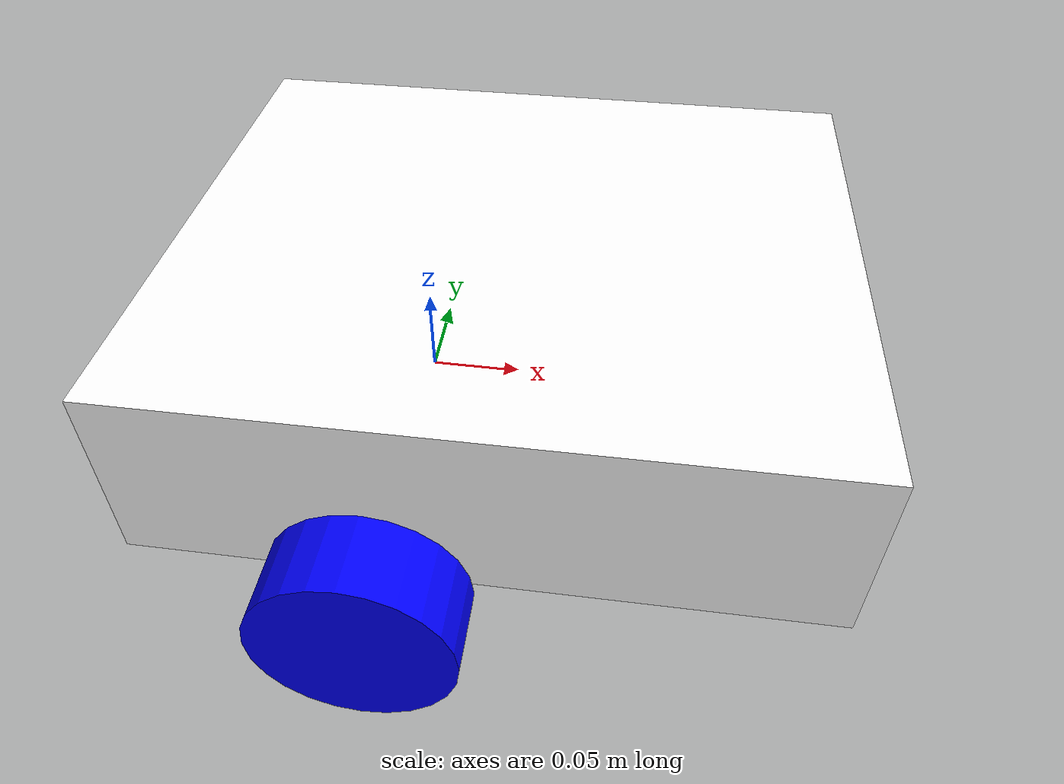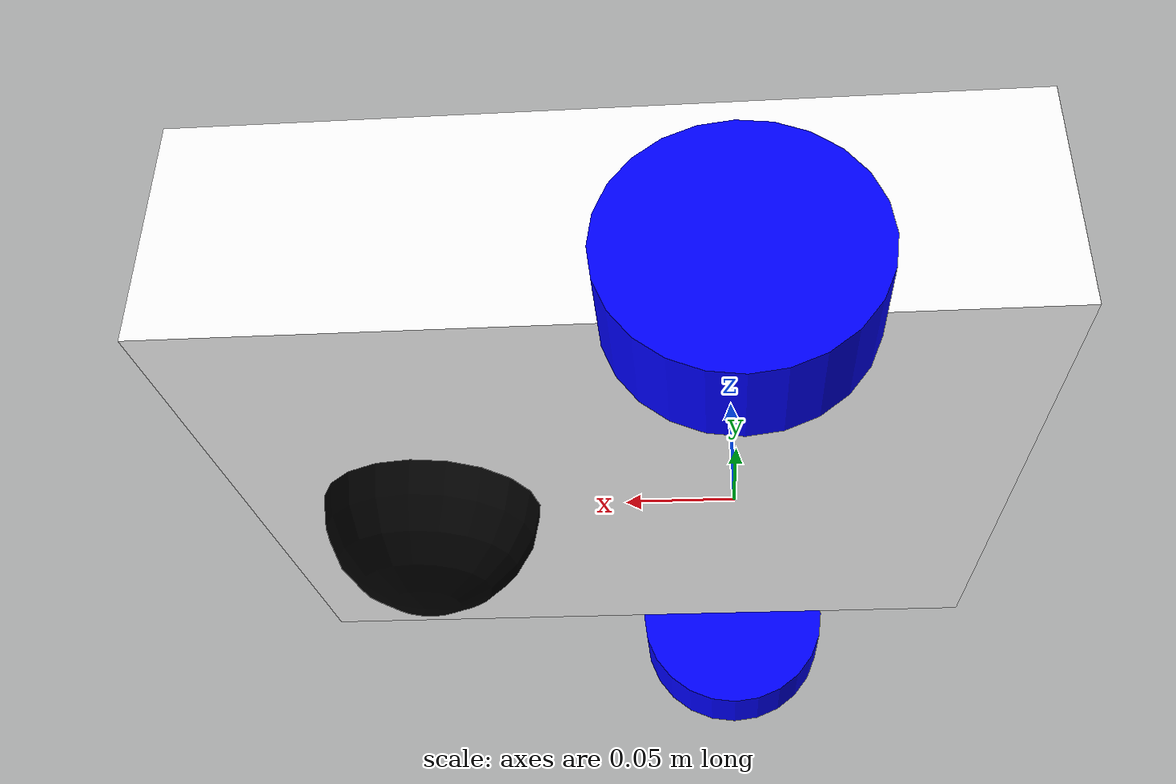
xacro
<?xml version="1.0"?>
<robot xmlns:xacro="http://www.ros.org/wiki/xacro">

    <xacro:include filename="inertial_macros.xacro"/>

    <!-- MATERIAL FOR ROBOT MODEL -->
    <material name="white">
        <color rgba="1 1 1 1"/>
    </material>

    <material name="black">
        <color rgba="0 0 0 1"/>
    </material>

    <material name="red">
        <color rgba="1 0 0 1"/>
    </material>

    <material name="blue">
        <color rgba="0 0 1 1"/>
    </material>

    <material name="green">
        <color rgba="0 1 0 1"/>
    </material>

    <!-- BASE LINK -->

    <link name="base_link"></link>

    <!--BASE FOOTPRINT-->
    <link name="base_footprint"/>

    <joint name="base_footprint_joint" type="fixed">
        <parent link="base_link"/>
        <child link="base_footprint"/>
        <origin xyz="0 0 0" ryp="0 0 0"/>
    </joint>

    <!-- CHASIS LINK -->
    <joint name="base_to_chassis" type="fixed">
        <parent link="base_link"/>
        <child link="chasis"/>
        <origin xyz="-0.1 0 0" rpy="0 0 0"/>
    </joint>

    <link name="chasis">
        <visual>
            <origin xyz="0.15 0 0.05" rpy="0 0 0"/>
            <geometry>
                <box size="0.35 0.3 0.1"/>
            </geometry>
            <material name="white"/>
        </visual>
        <collision>
            <origin xyz="0.15 0 0.05" rpy="0 0 0"/>
            <geometry>
                <box size="0.35 0.3 0.1"/>
            </geometry>
        </collision>
        <xacro:inertial_box mass="0.5" x="0.35" y="0.3" z="0.1">
            <origin xyz="0.15 0 0.05" rpy="0 0 0"/>
        </xacro:inertial_box>
    </link>

    <gazebo reference="chasis">
        <material>Gazebo/White</material>
    </gazebo>

    <!-- LEFT WHEELS LINKS -->
    <joint name="base_to_left_wheel" type="continuous">
        <parent link="base_link"/>
        <child link="left_wheel"/>
        <origin xyz="0 0.175 0" rpy="-${pi/2} 0 0"/>
        <axis xyz="0 0 1"/>
    </joint>

    <link name="left_wheel">
        <visual>
            <geometry>
                <cylinder radius="0.05" length="0.04"/>
            </geometry>
            <material name="blue"/>
        </visual>
        <collision>
            <geometry>
                <cylinder radius="0.05" length="0.04"/>
            </geometry>
        </collision>
        <xacro:inertial_cylinder mass="0.1" length="0.04" radius="0.05">
            <origin xyz="0 0 0" rpy="0 0 0"/>
        </xacro:inertial_cylinder>
    </link>

    <gazebo reference="left_wheel">
        <material>Gazebo/Blue</material>
    </gazebo>

    <!-- RIGHT WHEELS LINKS -->
    <joint name="base_to_right_wheel" type="continuous">
        <parent link="base_link"/>
        <child link="right_wheel"/>
        <origin xyz="0 -0.175 0" rpy="${pi/2} 0 0"/>
        <axis xyz="0 0 -1"/>
    </joint>

    <link name="right_wheel">
        <visual>
            <geometry>
                <cylinder radius="0.05" length="0.04"/>
            </geometry>
            <material name="blue"/>
        </visual>
        <collision>
            <geometry>
                <cylinder radius="0.05" length="0.04"/>
            </geometry>
        </collision>
        <xacro:inertial_cylinder mass="0.1" length="0.04" radius="0.05">
            <origin xyz="0 0 0" rpy="0 0 0"/>
        </xacro:inertial_cylinder>
    </link>

    <gazebo reference="right_wheel">
        <material>Gazebo/Blue</material>
    </gazebo>

    <!-- CASTOR WHEEL LINK -->
    <joint name="chasis_to_castor_wheel" type="fixed">
        <parent link="chasis"/>
        <child link="castor_wheel"/>
        <origin xyz="0.24 0 0"/>
    </joint>

    <link name="castor_wheel">
        <visual>
            <geometry>
                <sphere radius="0.05"/>
            </geometry>
            <material name="black"/>
        </visual>
        <collision>
            <geometry>
                <sphere radius="0.05"/>
            </geometry>
        </collision>
        <xacro:inertial_sphere mass="0.05" radius="0.05">
            <origin xyz="0 0 0" rpy="0 0 0"/>
        </xacro:inertial_sphere>
    </link>

    <gazebo reference="castor_wheel">
        <material>Gazebo/Black</material>
        <mu1 value = "0.001"/>
        <mu2 value = "0.001"/>
    </gazebo>

</robot>
